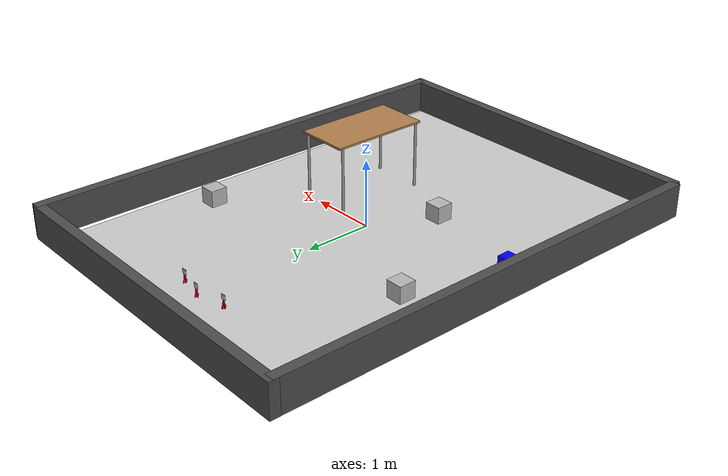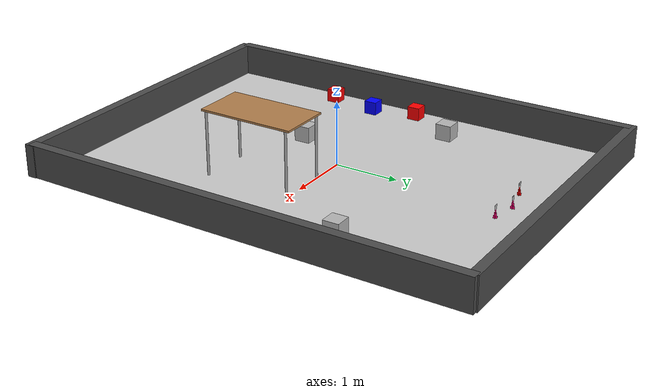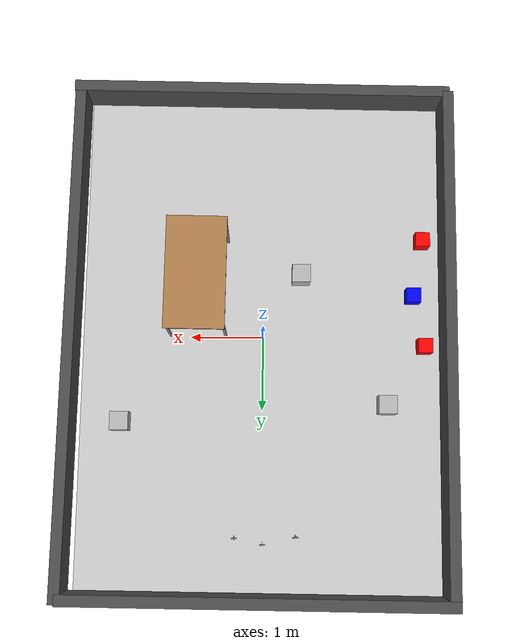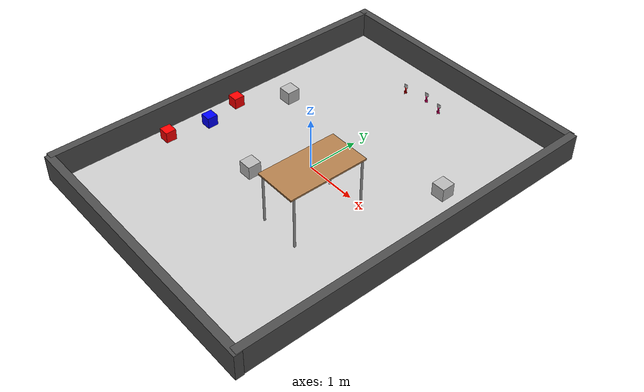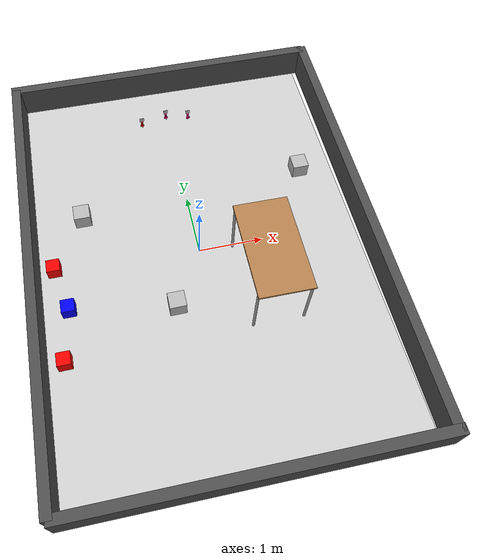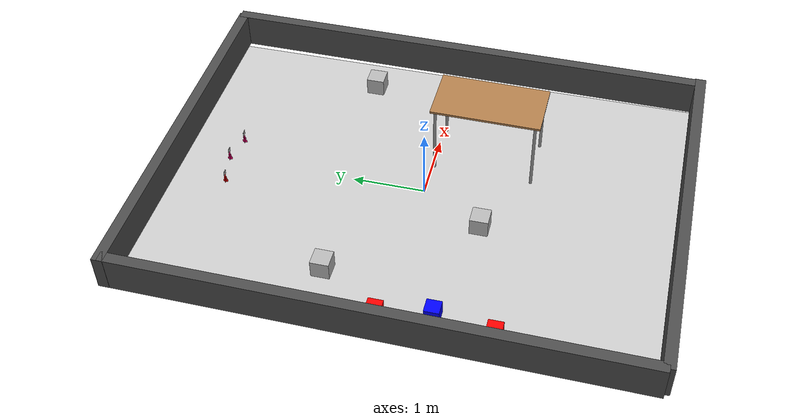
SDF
<sdf version="1.4">
 <world name="dpista23-1">
  <scene><ambient>0.8 0.8 0.8 1</ambient><background>0.7 0.7 0.7 1</background><shadows>true</shadows></scene>
  <include><uri>model://sun</uri><pose>-2.0 2.0 2.0 0 0 0</pose></include>
  <include><uri>model://pista23-1/pisosala</uri><pose>0 0 0 0 0 -1.57</pose></include>
  <include><uri>model://pista23-1/parede</uri><pose>-0.96 -3.25 0 0 0 -1.577</pose></include>
  <include><uri>model://pista23-1/mesa/mesa_1</uri><pose>0.891 -0.707 0 0 0 1.562</pose></include>
  <include><uri>model://pista23-1/creeper/creeper_11</uri><pose>0.36 2.72 0 0 0 -1.5</pose></include>
  <include><uri>model://pista23-1/creeper/creeper_21_vermelho</uri><pose>-0.46 2.70 0 0 0 -1.5</pose></include>
  <include><uri>model://pista23-1/creeper/creeper_11_verde</uri><pose>-0.02 2.80 0 0 0 -1.5</pose></include>
  <include><uri>model://pista23-1/objeto/bicycle</uri><pose>-0.52 -0.88 0.15 0 0 0</pose></include>
  <include><uri>model://pista23-1/objeto/dog</uri><pose>1.93 1.18 0.15 0 0 0</pose></include>
  <include><uri>model://pista23-1/objeto/horse</uri><pose>-1.7 0.922 0.15 0 0 0</pose></include>
  <include><uri>model://pista23-1/objeto/caixa_azul</uri><pose>-2.082 -0.606 0 0 0 0</pose></include>
  <include><uri>model://pista23-1/objeto/caixa_vermelha_01</uri><pose>-2.217 -1.399 0 0 0 0</pose></include>
  <include><uri>model://pista23-1/objeto/caixa_vermelha_02</uri><pose>-2.233 0.100 0 0 0 0</pose></include>
  <physics type="ode">
   <real_time_update_rate>1000.0</real_time_update_rate>
   <max_step_size>0.001</max_step_size>
   <real_time_factor>1</real_time_factor>
   <ode>
    <solver>
     <type>quick</type>
     <iters>150</iters>
     <precon_iters>0</precon_iters>
     <sor>1.400000</sor>
     <use_dynamic_moi_rescaling>1</use_dynamic_moi_rescaling>
    </solver>
    <constraints>
     <cfm>0.00001</cfm>
     <erp>0.2</erp>
     <contact_max_correcting_vel>2000.000000</contact_max_correcting_vel>
     <contact_surface_layer>0.01000</contact_surface_layer>
    </constraints>
   </ode>
  </physics>
 </world>
</sdf>

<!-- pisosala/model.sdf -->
<sdf version="1.6">
  <model name="pista23-1">
    <static>true</static>
    <link name="course_link">
      <collision name="course_collision">
        <geometry>
          <plane>
            <normal>0 0 1</normal>
            <size>7 5</size>
          </plane>
        </geometry>
        <surface>
          <friction>
            <ode>
              <mu>100</mu>
              <mu2>50</mu2>
            </ode>
          </friction>
        </surface>
      </collision>
      <visual name="course_visual">
        <cast_shadows>false</cast_shadows>
        <geometry>
	        <plane>
            <normal>0 0 1</normal>
            <size>7 5</size>
          </plane>
        </geometry>
	      <material>
          <script>
            <uri>model://pista23-1/pisosala/materials/scripts</uri>
            <uri>model://pista23-1/pisosala/materials/textures</uri>
            <name>pisosala</name>
          </script>
        </material>
      </visual>
    </link>
  </model>
</sdf>

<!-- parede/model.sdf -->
<sdf version='1.7'>
  <model name='parede'>
    <link name='Wall_0'>
      <pose>-3.27591 -1.59026 0 0 -0 0</pose>
      <self_collide>0</self_collide>
      <enable_wind>0</enable_wind>
      <kinematic>0</kinematic>
      <inertial>
        <inertia>
          <ixx>0</ixx>
          <ixy>0</ixy>
          <ixz>0</ixz>
          <iyy>0</iyy>
          <iyz>0</iyz>
          <izz>0</izz>
        </inertia>
        <mass>0</mass>
        <pose>0 0 0 0 -0 0</pose>
      </inertial>
      <visual name='Wall_0_Visual'>
        <pose>0 0 0.25 0 -0 0</pose>
        <geometry>
          <box>
            <size>6.99936 0.15 0.5</size>
          </box>
        </geometry>
        <material>
          <script>
            <uri>file://media/materials/scripts/gazebo.material</uri>
            <name>Gazebo/DarkGrey</name>
          </script>
          <ambient>0.5 0.5 0.5 1</ambient>
          <shader type='pixel'/>
        </material>
        <meta>
          <layer>0</layer>
        </meta>
        <transparency>0</transparency>
        <cast_shadows>1</cast_shadows>
      </visual>
      <collision name='Wall_0_Collision'>
        <laser_retro>0</laser_retro>
        <max_contacts>10</max_contacts>
        <pose>0 0 0.25 0 -0 0</pose>
        <geometry>
          <box>
            <size>6.99936 0.15 0.5</size>
          </box>
        </geometry>
        <surface>
          <friction>
            <ode>
              <mu>1</mu>
              <mu2>1</mu2>
              <fdir1>0 0 0</fdir1>
              <slip1>0</slip1>
              <slip2>0</slip2>
            </ode>
            <torsional>
              <coefficient>1</coefficient>
              <patch_radius>0</patch_radius>
              <surface_radius>0</surface_radius>
              <use_patch_radius>1</use_patch_radius>
              <ode>
                <slip>0</slip>
              </ode>
            </torsional>
          </friction>
          <bounce>
            <restitution_coefficient>0</restitution_coefficient>
            <threshold>1e+06</threshold>
          </bounce>
          <contact>
            <collide_without_contact>0</collide_without_contact>
            <collide_without_contact_bitmask>1</collide_without_contact_bitmask>
            <collide_bitmask>1</collide_bitmask>
            <ode>
              <soft_cfm>0</soft_cfm>
              <soft_erp>0.2</soft_erp>
              <kp>1e+13</kp>
              <kd>1</kd>
              <max_vel>0.01</max_vel>
              <min_depth>0</min_depth>
            </ode>
            <bullet>
              <split_impulse>1</split_impulse>
              <split_impulse_penetration_threshold>-0.01</split_impulse_penetration_threshold>
              <soft_cfm>0</soft_cfm>
              <soft_erp>0.2</soft_erp>
              <kp>1e+13</kp>
              <kd>1</kd>
            </bullet>
          </contact>
        </surface>
      </collision>
    </link>
    <link name='Wall_1'>
      <pose>-3.29036 3.55533 -0 0 -0 3.14</pose>
      <self_collide>0</self_collide>
      <enable_wind>0</enable_wind>
      <kinematic>0</kinematic>
      <inertial>
        <inertia>
          <ixx>0</ixx>
          <ixy>0</ixy>
          <ixz>0</ixz>
          <iyy>0</iyy>
          <iyz>0</iyz>
          <izz>0</izz>
        </inertia>
        <mass>0</mass>
        <pose>0 0 0 0 -0 0</pose>
      </inertial>
      <visual name='Wall_1_Visual'>
        <pose>0 0 0.25 0 -0 0</pose>
        <geometry>
          <box>
            <size>7.07255 0.15 0.5</size>
          </box>
        </geometry>
        <material>
          <script>
            <uri>file://media/materials/scripts/gazebo.material</uri>
            <name>Gazebo/DarkGrey</name>
          </script>
          <ambient>0.5 0.5 0.5 1</ambient>
          <shader type='pixel'/>
        </material>
        <meta>
          <layer>0</layer>
        </meta>
        <transparency>0</transparency>
        <cast_shadows>1</cast_shadows>
      </visual>
      <collision name='Wall_1_Collision'>
        <laser_retro>0</laser_retro>
        <max_contacts>10</max_contacts>
        <pose>0 0 0.25 0 -0 0</pose>
        <geometry>
          <box>
            <size>7.07255 0.15 0.5</size>
          </box>
        </geometry>
        <surface>
          <friction>
            <ode>
              <mu>1</mu>
              <mu2>1</mu2>
              <fdir1>0 0 0</fdir1>
              <slip1>0</slip1>
              <slip2>0</slip2>
            </ode>
            <torsional>
              <coefficient>1</coefficient>
              <patch_radius>0</patch_radius>
              <surface_radius>0</surface_radius>
              <use_patch_radius>1</use_patch_radius>
              <ode>
                <slip>0</slip>
              </ode>
            </torsional>
          </friction>
          <bounce>
            <restitution_coefficient>0</restitution_coefficient>
            <threshold>1e+06</threshold>
          </bounce>
          <contact>
            <collide_without_contact>0</collide_without_contact>
            <collide_without_contact_bitmask>1</collide_without_contact_bitmask>
            <collide_bitmask>1</collide_bitmask>
            <ode>
              <soft_cfm>0</soft_cfm>
              <soft_erp>0.2</soft_erp>
              <kp>1e+13</kp>
              <kd>1</kd>
              <max_vel>0.01</max_vel>
              <min_depth>0</min_depth>
            </ode>
            <bullet>
              <split_impulse>1</split_impulse>
              <split_impulse_penetration_threshold>-0.01</split_impulse_penetration_threshold>
              <soft_cfm>0</soft_cfm>
              <soft_erp>0.2</soft_erp>
              <kp>1e+13</kp>
              <kd>1</kd>
            </bullet>
          </contact>
        </surface>
      </collision>
    </link>
    <link name='Wall_2'>
      <pose>0.217983 1.01368 0 0 -0 1.57</pose>
      <self_collide>0</self_collide>
      <enable_wind>0</enable_wind>
      <kinematic>0</kinematic>
      <inertial>
        <inertia>
          <ixx>0</ixx>
          <ixy>0</ixy>
          <ixz>0</ixz>
          <iyy>0</iyy>
          <iyz>0</iyz>
          <izz>0</izz>
        </inertia>
        <mass>0</mass>
        <pose>0 0 0 0 -0 0</pose>
      </inertial>
      <visual name='Wall_2_Visual'>
        <pose>0 0 0.25 0 -0 0</pose>
        <geometry>
          <box>
            <size>5.24889 0.15 0.5</size>
          </box>
        </geometry>
        <material>
          <script>
            <uri>file://media/materials/scripts/gazebo.material</uri>
            <name>Gazebo/DarkGrey</name>
          </script>
          <ambient>0.5 0.5 0.5 1</ambient>
          <shader type='pixel'/>
        </material>
        <meta>
          <layer>0</layer>
        </meta>
        <transparency>0</transparency>
        <cast_shadows>1</cast_shadows>
      </visual>
      <collision name='Wall_2_Collision'>
        <laser_retro>0</laser_retro>
        <max_contacts>10</max_contacts>
        <pose>0 0 0.25 0 -0 0</pose>
        <geometry>
          <box>
            <size>5.24889 0.15 0.5</size>
          </box>
        </geometry>
        <surface>
          <friction>
            <ode>
              <mu>1</mu>
              <mu2>1</mu2>
              <fdir1>0 0 0</fdir1>
              <slip1>0</slip1>
              <slip2>0</slip2>
            </ode>
            <torsional>
              <coefficient>1</coefficient>
              <patch_radius>0</patch_radius>
              <surface_radius>0</surface_radius>
              <use_patch_radius>1</use_patch_radius>
              <ode>
                <slip>0</slip>
              </ode>
            </torsional>
          </friction>
          <bounce>
            <restitution_coefficient>0</restitution_coefficient>
            <threshold>1e+06</threshold>
          </bounce>
          <contact>
            <collide_without_contact>0</collide_without_contact>
            <collide_without_contact_bitmask>1</collide_without_contact_bitmask>
            <collide_bitmask>1</collide_bitmask>
            <ode>
              <soft_cfm>0</soft_cfm>
              <soft_erp>0.2</soft_erp>
              <kp>1e+13</kp>
              <kd>1</kd>
              <max_vel>0.01</max_vel>
              <min_depth>0</min_depth>
            </ode>
            <bullet>
              <split_impulse>1</split_impulse>
              <split_impulse_penetration_threshold>-0.01</split_impulse_penetration_threshold>
              <soft_cfm>0</soft_cfm>
              <soft_erp>0.2</soft_erp>
              <kp>1e+13</kp>
              <kd>1</kd>
            </bullet>
          </contact>
        </surface>
      </collision>
    </link>
    <link name='Wall_3'>
      <pose>-6.77123 0.95009 0 0 0 -1.57</pose>
      <self_collide>0</self_collide>
      <enable_wind>0</enable_wind>
      <kinematic>0</kinematic>
      <inertial>
        <inertia>
          <ixx>0</ixx>
          <ixy>0</ixy>
          <ixz>0</ixz>
          <iyy>0</iyy>
          <iyz>0</iyz>
          <izz>0</izz>
        </inertia>
        <mass>0</mass>
        <pose>0 0 0 0 -0 0</pose>
      </inertial>
      <visual name='Wall_3_Visual'>
        <pose>0 0 0.25 0 -0 0</pose>
        <geometry>
          <box>
            <size>5.23446 0.15 0.5</size>
          </box>
        </geometry>
        <material>
          <script>
            <uri>file://media/materials/scripts/gazebo.material</uri>
            <name>Gazebo/DarkGrey</name>
          </script>
          <ambient>0.5 0.5 0.5 1</ambient>
          <shader type='pixel'/>
        </material>
        <meta>
          <layer>0</layer>
        </meta>
        <transparency>0</transparency>
        <cast_shadows>1</cast_shadows>
      </visual>
      <collision name='Wall_3_Collision'>
        <laser_retro>0</laser_retro>
        <max_contacts>10</max_contacts>
        <pose>0 0 0.25 0 -0 0</pose>
        <geometry>
          <box>
            <size>5.23446 0.15 0.5</size>
          </box>
        </geometry>
        <surface>
          <friction>
            <ode>
              <mu>1</mu>
              <mu2>1</mu2>
              <fdir1>0 0 0</fdir1>
              <slip1>0</slip1>
              <slip2>0</slip2>
            </ode>
            <torsional>
              <coefficient>1</coefficient>
              <patch_radius>0</patch_radius>
              <surface_radius>0</surface_radius>
              <use_patch_radius>1</use_patch_radius>
              <ode>
                <slip>0</slip>
              </ode>
            </torsional>
          </friction>
          <bounce>
            <restitution_coefficient>0</restitution_coefficient>
            <threshold>1e+06</threshold>
          </bounce>
          <contact>
            <collide_without_contact>0</collide_without_contact>
            <collide_without_contact_bitmask>1</collide_without_contact_bitmask>
            <collide_bitmask>1</collide_bitmask>
            <ode>
              <soft_cfm>0</soft_cfm>
              <soft_erp>0.2</soft_erp>
              <kp>1e+13</kp>
              <kd>1</kd>
              <max_vel>0.01</max_vel>
              <min_depth>0</min_depth>
            </ode>
            <bullet>
              <split_impulse>1</split_impulse>
              <split_impulse_penetration_threshold>-0.01</split_impulse_penetration_threshold>
              <soft_cfm>0</soft_cfm>
              <soft_erp>0.2</soft_erp>
              <kp>1e+13</kp>
              <kd>1</kd>
            </bullet>
          </contact>
        </surface>
      </collision>
    </link>
    <static>1</static>
    <allow_auto_disable>1</allow_auto_disable>
  </model>
</sdf>

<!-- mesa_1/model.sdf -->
<sdf version='1.6'>
  <model name='mesa_01'>
    <model name='table_1'>
      <static>1</static>
      <link name='link'>
        <collision name='surface'>
          <pose frame=''>0 0 1 0 -0 0</pose>
          <geometry>
            <box>
              <size>1.5 0.8 0.03</size>
            </box>
          </geometry>
          <surface>
            <friction>
              <ode>
                <mu>0.6</mu>
                <mu2>0.6</mu2>
              </ode>
            </friction>
          </surface>
        </collision>
        <visual name='visual1'>
          <pose frame=''>0 0 1 0 -0 0</pose>
          <geometry>
            <box>
              <size>1.5 0.8 0.03</size>
            </box>
          </geometry>
          <material>
            <script>
              <uri>file://media/materials/scripts/gazebo.material</uri>
              <name>Gazebo/Wood</name>
            </script>
          </material>
        </visual>
        <collision name='front_left_leg'>
          <pose frame=''>0.68 0.38 0.5 0 -0 0</pose>
          <geometry>
            <cylinder>
              <radius>0.02</radius>
              <length>1</length>
            </cylinder>
          </geometry>
        </collision>
        <visual name='front_left_leg'>
          <pose frame=''>0.68 0.38 0.5 0 -0 0</pose>
          <geometry>
            <cylinder>
              <radius>0.02</radius>
              <length>1</length>
            </cylinder>
          </geometry>
          <material>
            <script>
              <uri>file://media/materials/scripts/gazebo.material</uri>
              <name>Gazebo/Grey</name>
            </script>
          </material>
        </visual>
        <collision name='front_right_leg'>
          <pose frame=''>0.68 -0.38 0.5 0 -0 0</pose>
          <geometry>
            <cylinder>
              <radius>0.02</radius>
              <length>1</length>
            </cylinder>
          </geometry>
        </collision>
        <visual name='front_right_leg'>
          <pose frame=''>0.68 -0.38 0.5 0 -0 0</pose>
          <geometry>
            <cylinder>
              <radius>0.02</radius>
              <length>1</length>
            </cylinder>
          </geometry>
          <material>
            <script>
              <uri>file://media/materials/scripts/gazebo.material</uri>
              <name>Gazebo/Grey</name>
            </script>
          </material>
        </visual>
        <collision name='back_right_leg'>
          <pose frame=''>-0.68 -0.38 0.5 0 -0 0</pose>
          <geometry>
            <cylinder>
              <radius>0.02</radius>
              <length>1</length>
            </cylinder>
          </geometry>
        </collision>
        <visual name='back_right_leg'>
          <pose frame=''>-0.68 -0.38 0.5 0 -0 0</pose>
          <geometry>
            <cylinder>
              <radius>0.02</radius>
              <length>1</length>
            </cylinder>
          </geometry>
          <material>
            <script>
              <uri>file://media/materials/scripts/gazebo.material</uri>
              <name>Gazebo/Grey</name>
            </script>
          </material>
        </visual>
        <collision name='back_left_leg'>
          <pose frame=''>-0.68 0.38 0.5 0 -0 0</pose>
          <geometry>
            <cylinder>
              <radius>0.02</radius>
              <length>1</length>
            </cylinder>
          </geometry>
        </collision>
        <visual name='back_left_leg'>
          <pose frame=''>-0.68 0.38 0.5 0 -0 0</pose>
          <geometry>
            <cylinder>
              <radius>0.02</radius>
              <length>1</length>
            </cylinder>
          </geometry>
          <material>
            <script>
              <uri>file://media/materials/scripts/gazebo.material</uri>
              <name>Gazebo/Grey</name>
            </script>
          </material>
        </visual>
      </link>
      <pose frame=''>0 -0 0 0 -0 0</pose>
    </model>
    <static>0</static>
    <allow_auto_disable>1</allow_auto_disable>
  </model>
</sdf>

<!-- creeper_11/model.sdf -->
<sdf version='1.6'>
  <model name='creeper_11_laranja'>
    <link name='link'>
      <pose frame=''>0 -0 0.115 0 -0 0</pose>
      <inertial>
        <mass>0.00004</mass>
        <inertia>
          <ixx>2.01e-06</ixx>
          <ixy>0</ixy>
          <ixz>0</ixz>
          <iyy>2.01e-06</iyy>
          <iyz>0</iyz>
          <izz>5.9e-07</izz>
        </inertia>
        <pose frame=''>0 0 0 0 -0 0</pose>
      </inertial>
      <self_collide>0</self_collide>
      <enable_wind>0</enable_wind>
      <kinematic>0</kinematic>
      <gravity>1</gravity>
      <visual name='visual'>
        <pose frame=''>0 0 -0.15 0 0 0</pose>
        <geometry>
          <mesh>
            <uri>model://pista23-1/creeper/creeper_11/materials/textures/creeper.dae</uri>
         <scale>1 1 1</scale>
          </mesh>
        </geometry>
        <transparency>0</transparency>
        <cast_shadows>1</cast_shadows>
      </visual>
      <collision name='collision'>
        <laser_retro>0</laser_retro>
        <max_contacts>10</max_contacts>
        <pose frame=''>0 0 0 0 -0 0</pose>
        <geometry>
          <box>
            <size>0.015 0.035 0.2</size>
          </box>
        </geometry>
        <surface>
          <friction>
            <ode>
              <mu>10</mu>
              <mu2>10</mu2>
              <fdir1>0 0 0</fdir1>
              <slip1>0</slip1>
              <slip2>0</slip2>
            </ode>
            <torsional>
              <coefficient>1</coefficient>
              <patch_radius>0</patch_radius>
              <surface_radius>0</surface_radius>
              <use_patch_radius>1</use_patch_radius>
              <ode>
                <slip>0</slip>
              </ode>
            </torsional>
          </friction>
          <bounce>
            <restitution_coefficient>0</restitution_coefficient>
            <threshold>1e+06</threshold>
          </bounce>
          <contact>
            <collide_without_contact>0</collide_without_contact>
            <collide_without_contact_bitmask>1</collide_without_contact_bitmask>
            <collide_bitmask>1</collide_bitmask>
            <ode>
              <soft_cfm>0</soft_cfm>
              <soft_erp>0.2</soft_erp>
              <kp>1e+13</kp>
              <kd>1</kd>
              <max_vel>0.01</max_vel>
              <min_depth>0</min_depth>
            </ode>
            <bullet>
              <split_impulse>1</split_impulse>
              <split_impulse_penetration_threshold>-0.01</split_impulse_penetration_threshold>
              <soft_cfm>0</soft_cfm>
              <soft_erp>0.2</soft_erp>
              <kp>1e+13</kp>
              <kd>1</kd>
            </bullet>
          </contact>
        </surface>
      </collision>
    </link>
    <static>0</static>
    <allow_auto_disable>1</allow_auto_disable>
        <link name='link_0'>
      <inertial>
        <mass>1.17438e-05</mass>
        <inertia>
          <ixx>3.26224e-09</ixx>
          <ixy>0</ixy>
          <ixz>0</ixz>
          <iyy>4.1282e-10</iyy>
          <iyz>0</iyz>
          <izz>3.29988e-09</izz>
        </inertia>
        <pose>0 0 0 0 -0 0</pose>
      </inertial>
      <pose>-0.0007 0.00118 0.189635 -1.2e-05 1e-06 8e-06</pose>
      <self_collide>0</self_collide>
      <enable_wind>0</enable_wind>
      <kinematic>0</kinematic>
      <visual name='visual'>
        <pose frame=''>0 0 0.2 0 -0 0</pose>
        <geometry>
          <box>
            <size>0.0000006 0.000008 0.000001</size>
          </box>
        </geometry>
        <transparency>0</transparency>
        <cast_shadows>1</cast_shadows>
        <material>
          <shader type='vertex'>
            <normal_map>__default__</normal_map>
          </shader>
        </material>
      </visual>
      <collision name='collision'>
        <laser_retro>0</laser_retro>
        <max_contacts>10</max_contacts>
        <pose>0 0 0 0 -0 0</pose>
        <geometry>
          <box>
            <size>0.01517 0.062 0.035</size>
          </box>
        </geometry>
        <surface>
          <friction>
            <ode>
              <mu>1</mu>
              <mu2>1</mu2>
              <fdir1>0 0 0</fdir1>
              <slip1>0</slip1>
              <slip2>0</slip2>
            </ode>
            <torsional>
              <coefficient>1</coefficient>
              <patch_radius>0</patch_radius>
              <surface_radius>0</surface_radius>
              <use_patch_radius>1</use_patch_radius>
              <ode>
                <slip>0</slip>
              </ode>
            </torsional>
          </friction>
          <bounce>
            <restitution_coefficient>0</restitution_coefficient>
            <threshold>1e+06</threshold>
          </bounce>
          <contact>
            <collide_without_contact>0</collide_without_contact>
            <collide_without_contact_bitmask>1</collide_without_contact_bitmask>
            <collide_bitmask>1</collide_bitmask>
            <ode>
              <soft_cfm>0</soft_cfm>
              <soft_erp>0.2</soft_erp>
              <kp>1e+13</kp>
              <kd>1</kd>
              <max_vel>0.01</max_vel>
              <min_depth>0</min_depth>
            </ode>
            <bullet>
              <split_impulse>1</split_impulse>
              <split_impulse_penetration_threshold>-0.01</split_impulse_penetration_threshold>
              <soft_cfm>0</soft_cfm>
              <soft_erp>0.2</soft_erp>
              <kp>1e+13</kp>
              <kd>1</kd>
            </bullet>
          </contact>
        </surface>
      </collision>
    </link>
    <joint name='link_0_JOINT_0' type='fixed'>
      <parent>link</parent>
      <child>link_0</child>
      <pose>0 0 0 0 -0 0</pose>
      <physics>
        <ode>
          <limit>
            <cfm>0</cfm>
            <erp>0.2</erp>
          </limit>
          <suspension>
            <cfm>0</cfm>
            <erp>0.2</erp>
          </suspension>
        </ode>
      </physics>
    </joint>
    <static>0</static>
    <allow_auto_disable>1</allow_auto_disable>
 </model>
</sdf>

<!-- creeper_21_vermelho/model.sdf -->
<sdf version='1.6'>
  <model name='creeper_21_vermelho'>
    <link name='link'>
      <pose frame=''>0 -0 0.115 0 -0 0</pose>
      <inertial>
        <mass>0.00004</mass>
        <inertia>
          <ixx>2.01e-06</ixx>
          <ixy>0</ixy>
          <ixz>0</ixz>
          <iyy>2.01e-06</iyy>
          <iyz>0</iyz>
          <izz>5.9e-07</izz>
        </inertia>
        <pose frame=''>0 0 0 0 -0 0</pose>
      </inertial>
      <self_collide>0</self_collide>
      <enable_wind>0</enable_wind>
      <kinematic>0</kinematic>
      <gravity>1</gravity>
      <visual name='visual'>
        <pose frame=''>0 0 -0.15 0 -0 0</pose>
        <geometry>
          <mesh>
            <uri>model://pista23-1/creeper/creeper_21_vermelho/materials/textures/creeper.dae</uri>
            <scale>1 1 1</scale>
          </mesh>
        </geometry>
        <transparency>0</transparency>
        <cast_shadows>1</cast_shadows>
      </visual>
      <collision name='collision'>
        <laser_retro>0</laser_retro>
        <max_contacts>10</max_contacts>
        <pose frame=''>0 0 0 0 -0 0</pose>
        <geometry>
          <box>
            <size>0.015 0.035 0.2</size>
          </box>
        </geometry>
        <surface>
          <friction>
            <ode>
              <mu>10</mu>
              <mu2>10</mu2>
              <fdir1>0 0 0</fdir1>
              <slip1>0</slip1>
              <slip2>0</slip2>
            </ode>
            <torsional>
              <coefficient>1</coefficient>
              <patch_radius>0</patch_radius>
              <surface_radius>0</surface_radius>
              <use_patch_radius>1</use_patch_radius>
              <ode>
                <slip>0</slip>
              </ode>
            </torsional>
          </friction>
          <bounce>
            <restitution_coefficient>0</restitution_coefficient>
            <threshold>1e+06</threshold>
          </bounce>
          <contact>
            <collide_without_contact>0</collide_without_contact>
            <collide_without_contact_bitmask>1</collide_without_contact_bitmask>
            <collide_bitmask>1</collide_bitmask>
            <ode>
              <soft_cfm>0</soft_cfm>
              <soft_erp>0.2</soft_erp>
              <kp>1e+13</kp>
              <kd>1</kd>
              <max_vel>0.01</max_vel>
              <min_depth>0</min_depth>
            </ode>
            <bullet>
              <split_impulse>1</split_impulse>
              <split_impulse_penetration_threshold>-0.01</split_impulse_penetration_threshold>
              <soft_cfm>0</soft_cfm>
              <soft_erp>0.2</soft_erp>
              <kp>1e+13</kp>
              <kd>1</kd>
            </bullet>
          </contact>
        </surface>
      </collision>
    </link>
    <static>0</static>
    <allow_auto_disable>1</allow_auto_disable>
 <link name='link_0'>
      <inertial>
        <mass>1.97443e-05</mass>
        <inertia>
          <ixx>1.1422e-08</ixx>
          <ixy>0</ixy>
          <ixz>0</ixz>
          <iyy>1.38195e-09</iyy>
          <iyz>0</iyz>
          <izz>1.21731e-08</izz>
        </inertia>
        <pose>0 0 0 0 -0 0</pose>
      </inertial>
      <pose>-0.0007 0.000208 0.189635 -1.2e-05 1e-06 8e-06</pose>
      <self_collide>0</self_collide>
      <enable_wind>0</enable_wind>
      <kinematic>0</kinematic>
      <visual name='visual'>
        <pose>0 0 0.2 0 -0 0</pose>
        <geometry>
          <box>
            <size>1e-06 8e-06 1e-06</size>
          </box>
        </geometry>
        <transparency>0</transparency>
        <cast_shadows>1</cast_shadows>
        <material>
          <shader type='vertex'>
            <normal_map>__default__</normal_map>
          </shader>
        </material>
      </visual>
      <collision name='collision'>
        <laser_retro>0</laser_retro>
        <max_contacts>10</max_contacts>
        <pose>0 0 0 0 -0 0</pose>
        <geometry>
          <box>
            <size>0.02546 0.08216 0.013845</size>
          </box>
        </geometry>
        <surface>
          <friction>
            <ode>
              <mu>1</mu>
              <mu2>1</mu2>
              <fdir1>0 0 0</fdir1>
              <slip1>0</slip1>
              <slip2>0</slip2>
            </ode>
            <torsional>
              <coefficient>1</coefficient>
              <patch_radius>0</patch_radius>
              <surface_radius>0</surface_radius>
              <use_patch_radius>1</use_patch_radius>
              <ode>
                <slip>0</slip>
              </ode>
            </torsional>
          </friction>
          <bounce>
            <restitution_coefficient>0</restitution_coefficient>
            <threshold>1e+06</threshold>
          </bounce>
          <contact>
            <collide_without_contact>0</collide_without_contact>
            <collide_without_contact_bitmask>1</collide_without_contact_bitmask>
            <collide_bitmask>1</collide_bitmask>
            <ode>
              <soft_cfm>0</soft_cfm>
              <soft_erp>0.2</soft_erp>
              <kp>1e+13</kp>
              <kd>1</kd>
              <max_vel>0.01</max_vel>
              <min_depth>0</min_depth>
            </ode>
            <bullet>
              <split_impulse>1</split_impulse>
              <split_impulse_penetration_threshold>-0.01</split_impulse_penetration_threshold>
              <soft_cfm>0</soft_cfm>
              <soft_erp>0.2</soft_erp>
              <kp>1e+13</kp>
              <kd>1</kd>
            </bullet>
          </contact>
        </surface>
      </collision>
    </link>
       <joint name='link_0_JOINT_0' type='fixed'>
      <parent>link</parent>
      <child>link_0</child>
      <pose>0 0 0 0 -0 0</pose>
      <physics>
        <ode>
          <limit>
            <cfm>0</cfm>
            <erp>0.2</erp>
          </limit>
          <suspension>
            <cfm>0</cfm>
            <erp>0.2</erp>
          </suspension>
        </ode>
      </physics>
    </joint>
    <static>0</static>
    <allow_auto_disable>1</allow_auto_disable>
  </model>
</sdf>

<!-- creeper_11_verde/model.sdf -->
<sdf version='1.6'>
  <model name='creeper_11_verde'>
    <link name='link'>
      <pose frame=''>0 -0 0.115 0 -0 0</pose>
      <inertial>
        <mass>0.00004</mass>
        <inertia>
          <ixx>2.01e-06</ixx>
          <ixy>0</ixy>
          <ixz>0</ixz>
          <iyy>2.01e-06</iyy>
          <iyz>0</iyz>
          <izz>5.9e-07</izz>
        </inertia>
        <pose frame=''>0 0 0 0 -0 0</pose>
      </inertial>
      <self_collide>0</self_collide>
      <enable_wind>0</enable_wind>
      <kinematic>0</kinematic>
      <gravity>1</gravity>
      <visual name='visual'>
        <pose frame=''>0 0 -0.15 0 -0 0</pose>
        <geometry>
          <mesh>
            <uri>model://pista23-1/creeper/creeper_11_verde/materials/textures/creeper.dae</uri>
         <scale>1 1 1</scale>
          </mesh>
        </geometry>
        <transparency>0</transparency>
        <cast_shadows>1</cast_shadows>
      </visual>
      <collision name='collision'>
        <laser_retro>0</laser_retro>
        <max_contacts>10</max_contacts>
        <pose frame=''>0 0 0 0 -0 0</pose>
        <geometry>
          <box>
            <size>0.015 0.035 0.2</size>
          </box>
        </geometry>
        <surface>
          <friction>
            <ode>
              <mu>10</mu>
              <mu2>10</mu2>
              <fdir1>0 0 0</fdir1>
              <slip1>0</slip1>
              <slip2>0</slip2>
            </ode>
            <torsional>
              <coefficient>1</coefficient>
              <patch_radius>0</patch_radius>
              <surface_radius>0</surface_radius>
              <use_patch_radius>1</use_patch_radius>
              <ode>
                <slip>0</slip>
              </ode>
            </torsional>
          </friction>
          <bounce>
            <restitution_coefficient>0</restitution_coefficient>
            <threshold>1e+06</threshold>
          </bounce>
          <contact>
            <collide_without_contact>0</collide_without_contact>
            <collide_without_contact_bitmask>1</collide_without_contact_bitmask>
            <collide_bitmask>1</collide_bitmask>
            <ode>
              <soft_cfm>0</soft_cfm>
              <soft_erp>0.2</soft_erp>
              <kp>1e+13</kp>
              <kd>1</kd>
              <max_vel>0.01</max_vel>
              <min_depth>0</min_depth>
            </ode>
            <bullet>
              <split_impulse>1</split_impulse>
              <split_impulse_penetration_threshold>-0.01</split_impulse_penetration_threshold>
              <soft_cfm>0</soft_cfm>
              <soft_erp>0.2</soft_erp>
              <kp>1e+13</kp>
              <kd>1</kd>
            </bullet>
          </contact>
        </surface>
      </collision>
    </link>
    <static>0</static>
    <allow_auto_disable>1</allow_auto_disable>
        <link name='link_0'>
      <inertial>
        <mass>1.17438e-05</mass>
        <inertia>
          <ixx>3.26224e-09</ixx>
          <ixy>0</ixy>
          <ixz>0</ixz>
          <iyy>4.1282e-10</iyy>
          <iyz>0</iyz>
          <izz>3.29988e-09</izz>
        </inertia>
        <pose>0 0 0 0 -0 0</pose>
      </inertial>
      <pose>-0.0007 0.00118 0.189635 -1.2e-05 1e-06 8e-06</pose>
      <self_collide>0</self_collide>
      <enable_wind>0</enable_wind>
      <kinematic>0</kinematic>
      <visual name='visual'>
        <pose frame=''>0 0 0.2 0 -0 0</pose>
        <geometry>
          <box>
            <size>0.0000006 0.000008 0.000001</size>
          </box>
        </geometry>
        <transparency>0</transparency>
        <cast_shadows>1</cast_shadows>
        <material>
          <shader type='vertex'>
            <normal_map>__default__</normal_map>
          </shader>
        </material>
      </visual>
      <collision name='collision'>
        <laser_retro>0</laser_retro>
        <max_contacts>10</max_contacts>
        <pose>0 0 0 0 -0 0</pose>
        <geometry>
          <box>
            <size>0.01517 0.062 0.035</size>
          </box>
        </geometry>
        <surface>
          <friction>
            <ode>
              <mu>1</mu>
              <mu2>1</mu2>
              <fdir1>0 0 0</fdir1>
              <slip1>0</slip1>
              <slip2>0</slip2>
            </ode>
            <torsional>
              <coefficient>1</coefficient>
              <patch_radius>0</patch_radius>
              <surface_radius>0</surface_radius>
              <use_patch_radius>1</use_patch_radius>
              <ode>
                <slip>0</slip>
              </ode>
            </torsional>
          </friction>
          <bounce>
            <restitution_coefficient>0</restitution_coefficient>
            <threshold>1e+06</threshold>
          </bounce>
          <contact>
            <collide_without_contact>0</collide_without_contact>
            <collide_without_contact_bitmask>1</collide_without_contact_bitmask>
            <collide_bitmask>1</collide_bitmask>
            <ode>
              <soft_cfm>0</soft_cfm>
              <soft_erp>0.2</soft_erp>
              <kp>1e+13</kp>
              <kd>1</kd>
              <max_vel>0.01</max_vel>
              <min_depth>0</min_depth>
            </ode>
            <bullet>
              <split_impulse>1</split_impulse>
              <split_impulse_penetration_threshold>-0.01</split_impulse_penetration_threshold>
              <soft_cfm>0</soft_cfm>
              <soft_erp>0.2</soft_erp>
              <kp>1e+13</kp>
              <kd>1</kd>
            </bullet>
          </contact>
        </surface>
      </collision>
    </link>
    <joint name='link_0_JOINT_0' type='fixed'>
      <parent>link</parent>
      <child>link_0</child>
      <pose>0 0 0 0 -0 0</pose>
      <physics>
        <ode>
          <limit>
            <cfm>0</cfm>
            <erp>0.2</erp>
          </limit>
          <suspension>
            <cfm>0</cfm>
            <erp>0.2</erp>
          </suspension>
        </ode>
      </physics>
    </joint>
    <static>0</static>
    <allow_auto_disable>1</allow_auto_disable>
 </model>
</sdf>

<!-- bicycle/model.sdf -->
<sdf version="1.6">
  <model name="bicycle">
    <static>true</static>
    <link name="box">
      <pose>0 0 0 0 0 0</pose>
      <collision name="collision">
        <geometry>
          <box>
            <size>0.25 0.25 0.25</size>
          </box>
        </geometry>
      </collision>
      <visual name="visual">
        <geometry>
          <box>
            <size>0.25 0.25 0.25</size>
          </box>
        </geometry>
        <material>
          <script>
            <uri>model://pista23-1/objeto/bicycle/materials/scripts</uri>
            <uri>model://pista23-1/objeto/bicycle/materials/textures</uri>
            <name>bicycle</name>
          </script>
        </material>
      </visual>
    </link>
  </model>
</sdf>

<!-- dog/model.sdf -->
<sdf version="1.6">
  <model name="dog">
    <static>true</static>
    <link name="box">
      <pose>0 0 0 0 0 0</pose>
      <collision name="collision">
        <geometry>
          <box>
            <size>0.25 0.25 0.25</size>
          </box>
        </geometry>
      </collision>
      <visual name="visual">
        <geometry>
          <box>
            <size>0.25 0.25 0.25</size>
          </box>
        </geometry>
        <material>
          <script>
            <uri>model://pista23-B/objeto/dog/materials/scripts</uri>
            <uri>model://pista23-B/objeto/dog/materials/textures</uri>
            <name>dog</name>
          </script>
        </material>
      </visual>
    </link>
  </model>
</sdf>

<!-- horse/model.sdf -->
<sdf version="1.6">
  <model name="horse">
    <static>true</static>
    <link name="box">
      <pose>0 0 0 0 0 0</pose>
      <collision name="collision">
        <geometry>
          <box>
            <size>0.25 0.25 0.25</size>
          </box>
        </geometry>
      </collision>
      <visual name="visual">
        <geometry>
          <box>
            <size>0.25 0.25 0.25</size>
          </box>
        </geometry>
        <material>
          <script>
            <uri>model://pista23-1/objeto/horse/materials/scripts</uri>
            <uri>model://pista23-1/objeto/horse/materials/textures</uri>
            <name>horse</name>
          </script>
        </material>
      </visual>
    </link>
  </model>
</sdf>

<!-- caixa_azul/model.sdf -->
<sdf version='1.6'>
  <model name='caixa_azul'>
    <link name='link'>
      <inertial>
        <mass>5.24856</mass>
        <inertia>
          <ixx>1.24839</ixx>
          <ixy>0</ixy>
          <ixz>0</ixz>
          <iyy>2.87035</iyy>
          <iyz>0</iyz>
          <izz>1.84376</izz>
        </inertia>
        <pose frame=''>0 0 0 0 -0 0</pose>
      </inertial>
      <self_collide>0</self_collide>
      <enable_wind>0</enable_wind>
      <kinematic>0</kinematic>
      <pose frame=''>0 0 0 0 -0 0</pose>
      <gravity>1</gravity>
      <visual name='visual'>
        <geometry>
          <box>
            <size>0.20 0.20 0.40</size>
          </box>
        </geometry>
        <material>
          <script>
            <name>Gazebo/Grey</name>
            <uri>file://media/materials/scripts/gazebo.material</uri>
          </script>
          <shader type='vertex'>
            <normal_map>__default__</normal_map>
          </shader>
          <ambient>0 0 1 1</ambient>
          <diffuse>0 0 1 1</diffuse>
          <specular>0 0 1 1</specular>
          <emissive>0 0 1 1</emissive>
        </material>
        <pose frame=''>0 0 0 0 -0 0</pose>
        <transparency>0</transparency>
        <cast_shadows>1</cast_shadows>
      </visual>
      <collision name='collision'>
        <laser_retro>0</laser_retro>
        <max_contacts>10</max_contacts>
        <pose frame=''>0 0 0 0 -0 0</pose>
        <geometry>
          <box>
            <size>0.20 0.20 0.40</size>
          </box>
        </geometry>
        <surface>
          <friction>
            <ode>
              <mu>1</mu>
              <mu2>1</mu2>
              <fdir1>0 0 0</fdir1>
              <slip1>0</slip1>
              <slip2>0</slip2>
            </ode>
            <torsional>
              <coefficient>1</coefficient>
              <patch_radius>0</patch_radius>
              <surface_radius>0</surface_radius>
              <use_patch_radius>1</use_patch_radius>
              <ode>
                <slip>0</slip>
              </ode>
            </torsional>
          </friction>
          <bounce>
            <restitution_coefficient>0</restitution_coefficient>
            <threshold>1e+06</threshold>
          </bounce>
          <contact>
            <collide_without_contact>0</collide_without_contact>
            <collide_without_contact_bitmask>1</collide_without_contact_bitmask>
            <collide_bitmask>1</collide_bitmask>
            <ode>
              <soft_cfm>0</soft_cfm>
              <soft_erp>0.2</soft_erp>
              <kp>1e+13</kp>
              <kd>1</kd>
              <max_vel>0.01</max_vel>
              <min_depth>0</min_depth>
            </ode>
            <bullet>
              <split_impulse>1</split_impulse>
              <split_impulse_penetration_threshold>-0.01</split_impulse_penetration_threshold>
              <soft_cfm>0</soft_cfm>
              <soft_erp>0.2</soft_erp>
              <kp>1e+13</kp>
              <kd>1</kd>
            </bullet>
          </contact>
        </surface>
      </collision>
    </link>
    <static>0</static>
    <allow_auto_disable>1</allow_auto_disable>
  </model>
</sdf>

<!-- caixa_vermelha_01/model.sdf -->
<sdf version='1.6'>
  <model name='caixa_vermelha_01'>
    <link name='link'>
      <inertial>
        <mass>1</mass>
        <inertia>
          <ixx>0.166667</ixx>
          <ixy>0</ixy>
          <ixz>0</ixz>
          <iyy>0.166667</iyy>
          <iyz>0</iyz>
          <izz>0.166667</izz>
        </inertia>
        <pose frame=''>0 0 0 0 -0 0</pose>
      </inertial>
      <self_collide>0</self_collide>
      <enable_wind>0</enable_wind>
      <kinematic>0</kinematic>
      <pose frame=''>0 0 0 0 -0 0</pose>
      <gravity>1</gravity>
      <visual name='visual'>
        <geometry>
          <box>
            <size>0.20 0.20 0.40</size>
          </box>
        </geometry>
        <material>
          <script>
            <name>Gazebo/Grey</name>
            <uri>file://media/materials/scripts/gazebo.material</uri>
          </script>
          <shader type='vertex'>
            <normal_map>__default__</normal_map>
          </shader>
          <ambient>1 0 0 1</ambient>
          <diffuse>1 0 0 1</diffuse>
          <specular>1 0 0 1</specular>
          <emissive>0 0 0 1</emissive>
        </material>
        <pose frame=''>0 0 0 0 -0 0</pose>
        <transparency>0</transparency>
        <cast_shadows>1</cast_shadows>
      </visual>
      <collision name='collision'>
        <laser_retro>0</laser_retro>
        <max_contacts>10</max_contacts>
        <pose frame=''>0 0 0 0 -0 0</pose>
        <geometry>
          <box>
            <size>0.20 0.20 0.40</size>
          </box>
        </geometry>
        <surface>
          <friction>
            <ode>
              <mu>1</mu>
              <mu2>1</mu2>
              <fdir1>0 0 0</fdir1>
              <slip1>0</slip1>
              <slip2>0</slip2>
            </ode>
            <torsional>
              <coefficient>1</coefficient>
              <patch_radius>0</patch_radius>
              <surface_radius>0</surface_radius>
              <use_patch_radius>1</use_patch_radius>
              <ode>
                <slip>0</slip>
              </ode>
            </torsional>
          </friction>
          <bounce>
            <restitution_coefficient>0</restitution_coefficient>
            <threshold>1e+06</threshold>
          </bounce>
          <contact>
            <collide_without_contact>0</collide_without_contact>
            <collide_without_contact_bitmask>1</collide_without_contact_bitmask>
            <collide_bitmask>1</collide_bitmask>
            <ode>
              <soft_cfm>0</soft_cfm>
              <soft_erp>0.2</soft_erp>
              <kp>1e+13</kp>
              <kd>1</kd>
              <max_vel>0.01</max_vel>
              <min_depth>0</min_depth>
            </ode>
            <bullet>
              <split_impulse>1</split_impulse>
              <split_impulse_penetration_threshold>-0.01</split_impulse_penetration_threshold>
              <soft_cfm>0</soft_cfm>
              <soft_erp>0.2</soft_erp>
              <kp>1e+13</kp>
              <kd>1</kd>
            </bullet>
          </contact>
        </surface>
      </collision>
    </link>
    <static>0</static>
    <allow_auto_disable>1</allow_auto_disable>
  </model>
</sdf>

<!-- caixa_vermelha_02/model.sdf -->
<sdf version='1.6'>
  <model name='caixa_vermelha_02'>
    <link name='link'>
      <inertial>
        <mass>1</mass>
        <inertia>
          <ixx>0.166667</ixx>
          <ixy>0</ixy>
          <ixz>0</ixz>
          <iyy>0.166667</iyy>
          <iyz>0</iyz>
          <izz>0.166667</izz>
        </inertia>
        <pose frame=''>0 0 0 0 -0 0</pose>
      </inertial>
      <self_collide>0</self_collide>
      <enable_wind>0</enable_wind>
      <kinematic>0</kinematic>
      <pose frame=''>0 0 0 0 -0 0</pose>
      <gravity>1</gravity>
      <visual name='visual'>
        <geometry>
          <box>
            <size>0.20 0.20 0.40</size>
          </box>
        </geometry>
        <material>
          <script>
            <name>Gazebo/Grey</name>
            <uri>file://media/materials/scripts/gazebo.material</uri>
          </script>
          <shader type='vertex'>
            <normal_map>__default__</normal_map>
          </shader>
          <ambient>1 0 0 1</ambient>
          <diffuse>1 0 0 1</diffuse>
          <specular>1 0 0 1</specular>
          <emissive>0 0 0 1</emissive>
        </material>
        <pose frame=''>0 0 0 0 -0 0</pose>
        <transparency>0</transparency>
        <cast_shadows>1</cast_shadows>
      </visual>
      <collision name='collision'>
        <laser_retro>0</laser_retro>
        <max_contacts>10</max_contacts>
        <pose frame=''>0 0 0 0 -0 0</pose>
        <geometry>
          <box>
            <size>0.20 0.20 0.40</size>
          </box>
        </geometry>
        <surface>
          <friction>
            <ode>
              <mu>1</mu>
              <mu2>1</mu2>
              <fdir1>0 0 0</fdir1>
              <slip1>0</slip1>
              <slip2>0</slip2>
            </ode>
            <torsional>
              <coefficient>1</coefficient>
              <patch_radius>0</patch_radius>
              <surface_radius>0</surface_radius>
              <use_patch_radius>1</use_patch_radius>
              <ode>
                <slip>0</slip>
              </ode>
            </torsional>
          </friction>
          <bounce>
            <restitution_coefficient>0</restitution_coefficient>
            <threshold>1e+06</threshold>
          </bounce>
          <contact>
            <collide_without_contact>0</collide_without_contact>
            <collide_without_contact_bitmask>1</collide_without_contact_bitmask>
            <collide_bitmask>1</collide_bitmask>
            <ode>
              <soft_cfm>0</soft_cfm>
              <soft_erp>0.2</soft_erp>
              <kp>1e+13</kp>
              <kd>1</kd>
              <max_vel>0.01</max_vel>
              <min_depth>0</min_depth>
            </ode>
            <bullet>
              <split_impulse>1</split_impulse>
              <split_impulse_penetration_threshold>-0.01</split_impulse_penetration_threshold>
              <soft_cfm>0</soft_cfm>
              <soft_erp>0.2</soft_erp>
              <kp>1e+13</kp>
              <kd>1</kd>
            </bullet>
          </contact>
        </surface>
      </collision>
    </link>
    <static>0</static>
    <allow_auto_disable>1</allow_auto_disable>
  </model>
</sdf>
